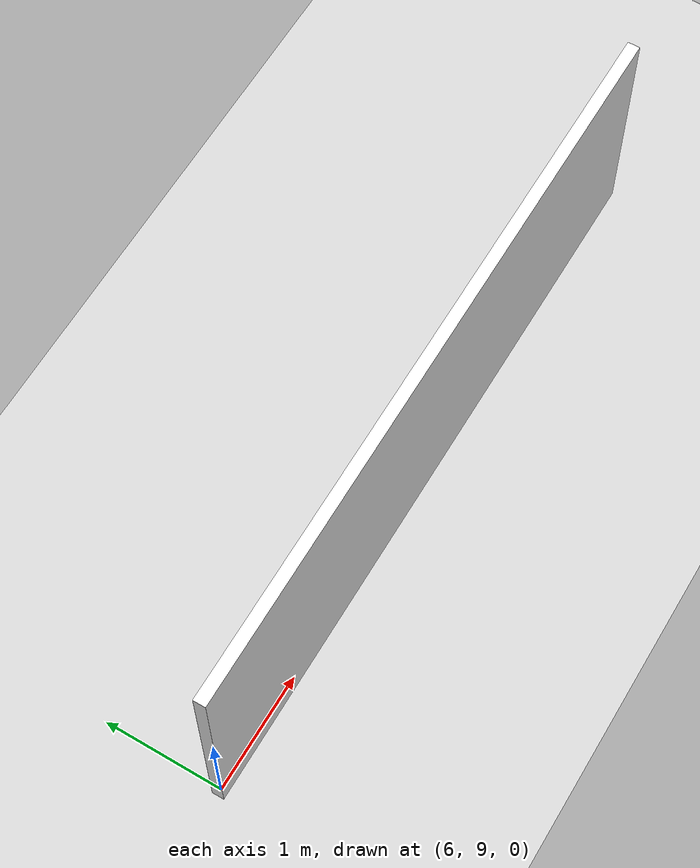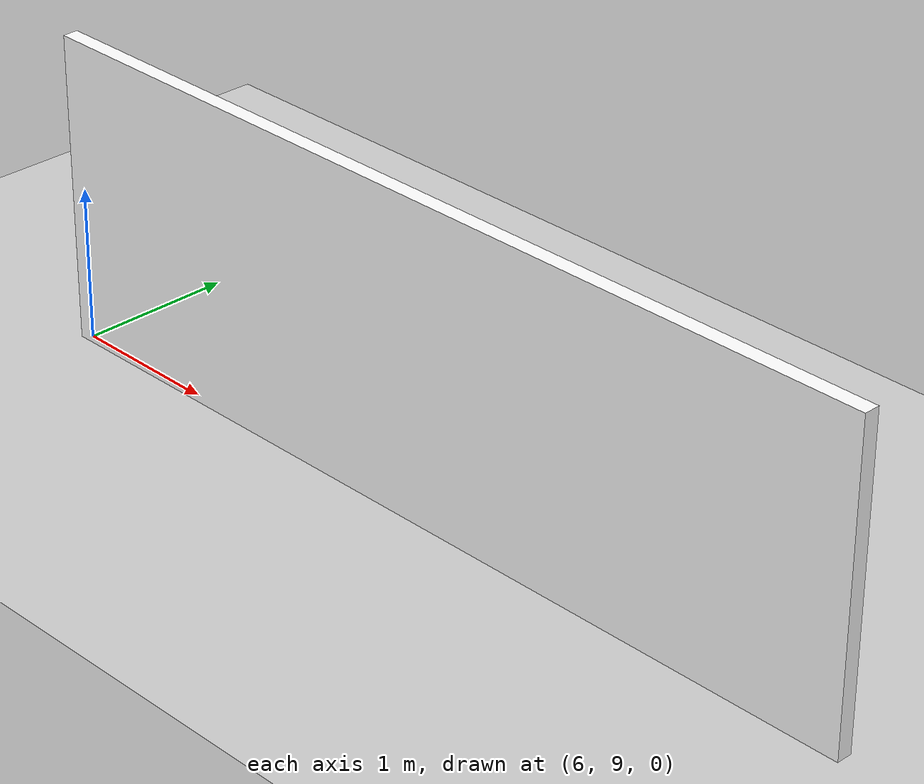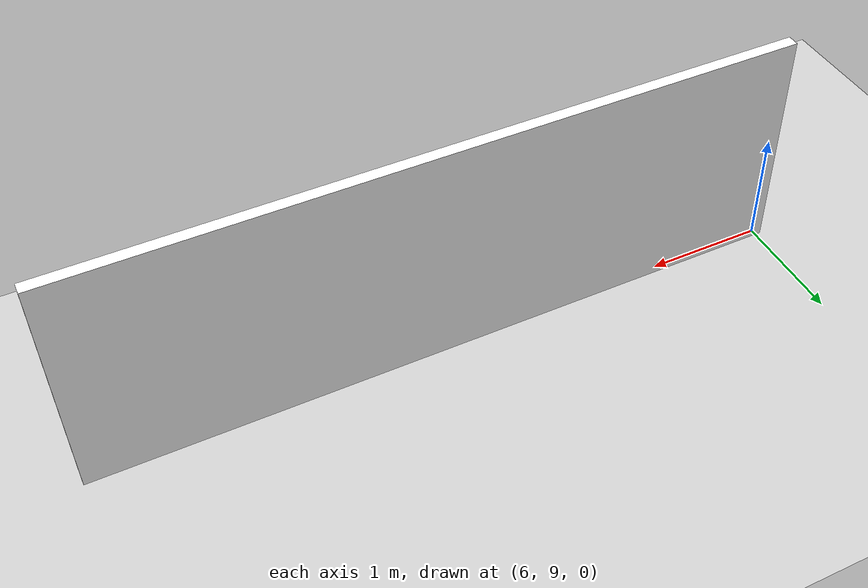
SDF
<?xml version="1.0"?>

<sdf version="1.4">
    <world name="chironix">
        <include>
            <uri>model://ground_plane</uri>
        </include>

        <include>
            <uri>model://sun</uri>
        </include>

        <!-- Walls-->

        <include>
            <uri>model://wall</uri>
            <name>wall_1</name>
            <pose>8.95 9 0 0 0 0</pose>
        </include>

        <light name='user_point_light_0' type='point'>
            <pose frame=''>0.175067 -0.005194 1 0 -0 0</pose>
            <diffuse>0.5 0.5 0.5 1</diffuse>
            <specular>0.1 0.1 0.1 1</specular>
            <attenuation>
              <range>20</range>
              <constant>0.5</constant>
              <linear>0.01</linear>
              <quadratic>0.001</quadratic>
            </attenuation>
            <cast_shadows>0</cast_shadows>
            <direction>0 0 -1</direction>
        </light>

        <gravity>0 0 -9.8</gravity>
        <magnetic_field>6e-06 2.3e-05 -4.2e-05</magnetic_field>
        <physics name='default_physics' default='0' type='ode'>
            <max_step_size>1</max_step_size>
            <real_time_factor>0.5</real_time_factor>
            <real_time_update_rate>500</real_time_update_rate>
        </physics>
        <scene>
            <ambient>0.4 0.4 0.4 1</ambient>
            <background>0.7 0.7 0.7 1</background>
            <shadows>0</shadows>
        </scene>

    </world>
</sdf>

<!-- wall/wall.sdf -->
<sdf version="1.4">
    <model name="wall">
        <static>true</static>
        <link name="wall_link">

            <visual name="wall_mesh">
                <geometry>
                    <mesh>
                        <uri>model://wall/meshes/model.dae</uri>
                    </mesh>
                </geometry>
            </visual>

            <collision name="wall_collison">
                <pose>0 0 1</pose>
                <geometry>
                    <box>
                        <size>6.034290 0.105044 2.00</size>
                    </box>
                </geometry>
            </collision>
        </link>
    </model>
</sdf>
